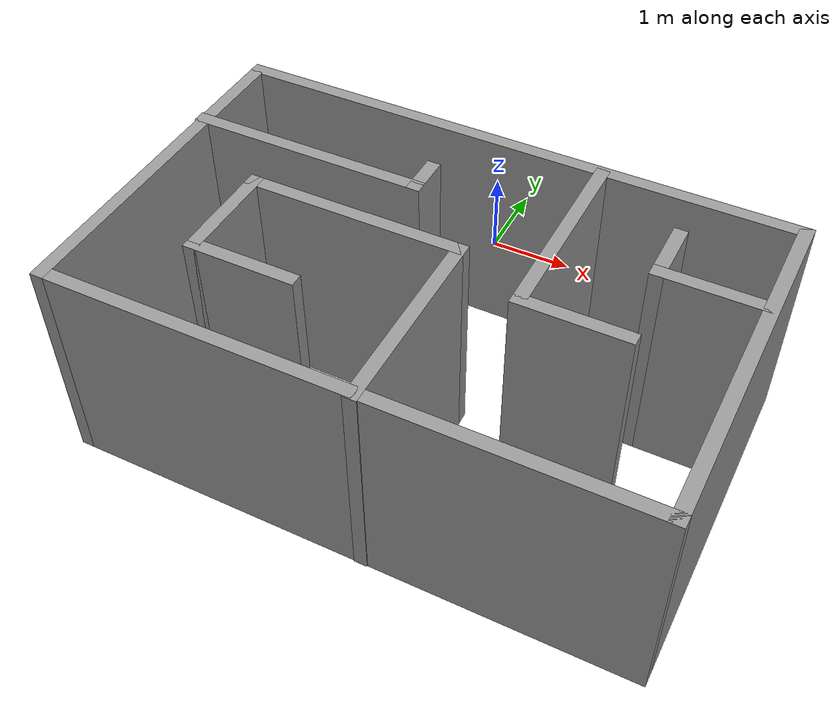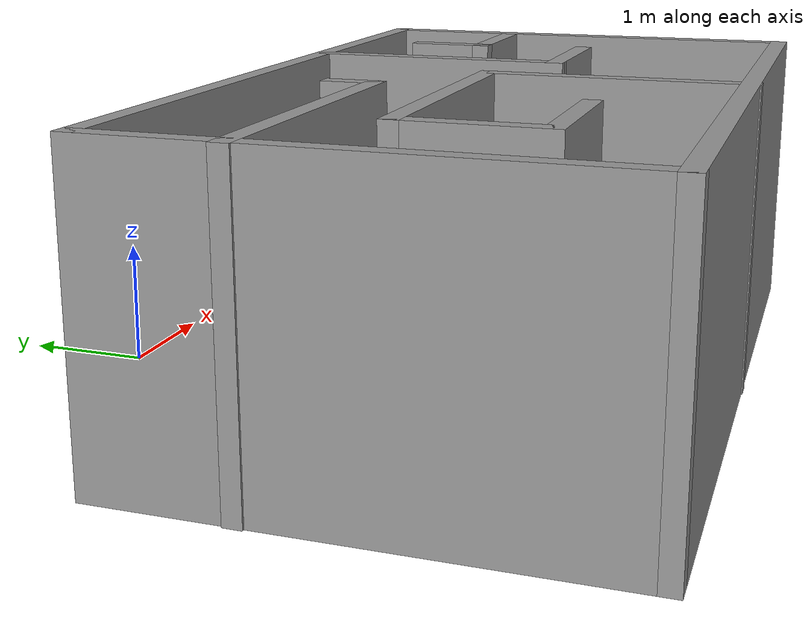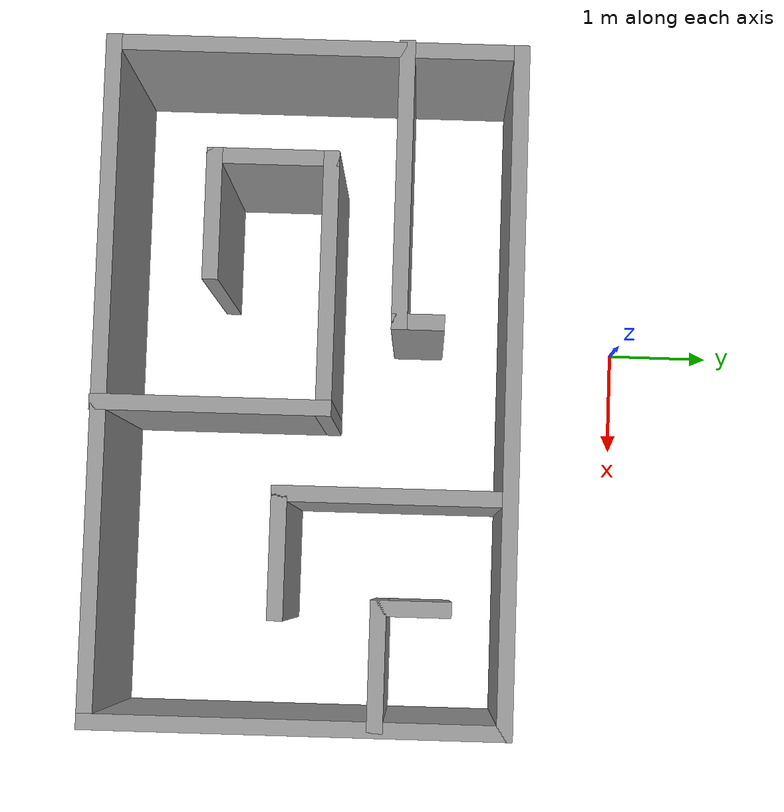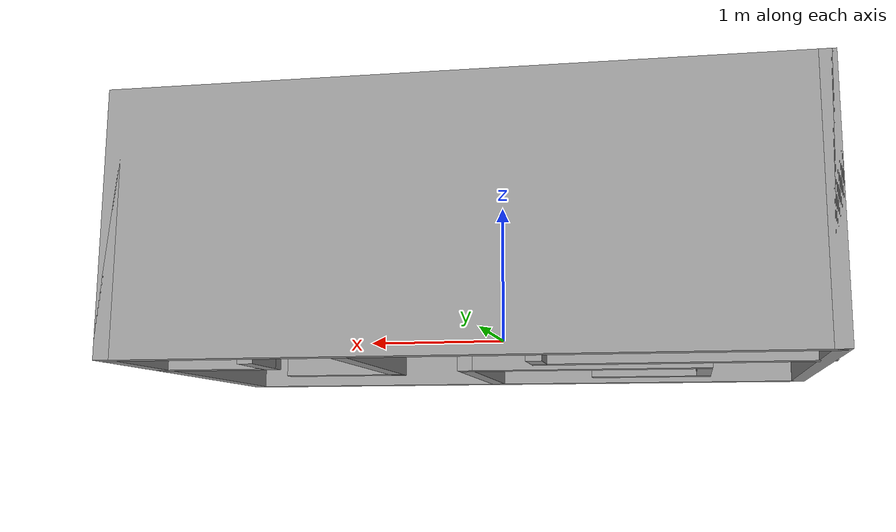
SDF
<?xml version='1.0'?>
<sdf version='1.7'>
  <model name='room'>
    <pose>0.595 -2.5225 0 0 -0 0</pose>
    <link name='Wall_10'>
      <collision name='Wall_10_Collision'>
        <geometry>
          <box>
            <size>6.5 0.15 2.5</size>
          </box>
        </geometry>
        <pose>0 0 1.25 0 -0 0</pose>
      </collision>
      <visual name='Wall_10_Visual'>
        <pose>0 0 1.25 0 -0 0</pose>
        <geometry>
          <box>
            <size>6.5 0.15 2.5</size>
          </box>
        </geometry>
        <material>
          <script>
            <uri>file://media/materials/scripts/gazebo.material</uri>
            <name>Gazebo/Grey</name>
          </script>
          <ambient>1 1 1 1</ambient>
        </material>
        <meta>
          <layer>0</layer>
        </meta>
      </visual>
      <pose>0.01 1.4125 0 0 -0 0</pose>
    </link>
    <link name='Wall_11'>
      <collision name='Wall_11_Collision'>
        <geometry>
          <box>
            <size>4 0.15 2.5</size>
          </box>
        </geometry>
        <pose>0 0 1.25 0 -0 0</pose>
      </collision>
      <visual name='Wall_11_Visual'>
        <pose>0 0 1.25 0 -0 0</pose>
        <geometry>
          <box>
            <size>4 0.15 2.5</size>
          </box>
        </geometry>
        <material>
          <script>
            <uri>file://media/materials/scripts/gazebo.material</uri>
            <name>Gazebo/Grey</name>
          </script>
          <ambient>1 1 1 1</ambient>
        </material>
        <meta>
          <layer>0</layer>
        </meta>
      </visual>
      <pose>3.185 -0.5125 0 0 -0 -1.5708</pose>
    </link>
    <link name='Wall_12'>
      <collision name='Wall_12_Collision'>
        <geometry>
          <box>
            <size>6.5 0.15 2.5</size>
          </box>
        </geometry>
        <pose>0 0 1.25 0 -0 0</pose>
      </collision>
      <visual name='Wall_12_Visual'>
        <pose>0 0 1.25 0 -0 0</pose>
        <geometry>
          <box>
            <size>6.5 0.15 2.5</size>
          </box>
        </geometry>
        <material>
          <script>
            <uri>file://media/materials/scripts/gazebo.material</uri>
            <name>Gazebo/Grey</name>
          </script>
          <ambient>1 1 1 1</ambient>
        </material>
        <meta>
          <layer>0</layer>
        </meta>
      </visual>
      <pose>0.01 -2.4375 0 0 -0 3.14159</pose>
    </link>
    <link name='Wall_13'>
      <collision name='Wall_13_Collision'>
        <geometry>
          <box>
            <size>4 0.15 2.5</size>
          </box>
        </geometry>
        <pose>0 0 1.25 0 -0 0</pose>
      </collision>
      <visual name='Wall_13_Visual'>
        <pose>0 0 1.25 0 -0 0</pose>
        <geometry>
          <box>
            <size>4 0.15 2.5</size>
          </box>
        </geometry>
        <material>
          <script>
            <uri>file://media/materials/scripts/gazebo.material</uri>
            <name>Gazebo/Grey</name>
          </script>
          <ambient>1 1 1 1</ambient>
        </material>
        <meta>
          <layer>0</layer>
        </meta>
      </visual>
      <pose>-3.165 -0.5125 0 0 -0 1.5708</pose>
    </link>
    <link name='Wall_16'>
      <collision name='Wall_16_Collision'>
        <geometry>
          <box>
            <size>0.5 0.15 2.5</size>
          </box>
        </geometry>
        <pose>0 0 1.25 0 -0 0</pose>
      </collision>
      <visual name='Wall_16_Visual'>
        <pose>0 0 1.25 0 -0 0</pose>
        <geometry>
          <box>
            <size>0.5 0.15 2.5</size>
          </box>
        </geometry>
        <material>
          <script>
            <uri>file://media/materials/scripts/gazebo.material</uri>
            <name>Gazebo/Grey</name>
          </script>
          <ambient>1 1 1 1</ambient>
        </material>
        <meta>
          <layer>0</layer>
        </meta>
      </visual>
      <pose>-0.585 0.5075 0 0 -0 1.5708</pose>
    </link>
    <link name='Wall_18'>
      <collision name='Wall_18_Collision'>
        <geometry>
          <box>
            <size>2.75 0.15 2.5</size>
          </box>
        </geometry>
        <pose>0 0 1.25 0 -0 0</pose>
      </collision>
      <visual name='Wall_18_Visual'>
        <pose>0 0 1.25 0 -0 0</pose>
        <geometry>
          <box>
            <size>2.75 0.15 2.5</size>
          </box>
        </geometry>
        <material>
          <script>
            <uri>file://media/materials/scripts/gazebo.material</uri>
            <name>Gazebo/Grey</name>
          </script>
          <ambient>1 1 1 1</ambient>
        </material>
        <meta>
          <layer>0</layer>
        </meta>
      </visual>
      <pose>-1.885 0.3325 0 0 -0 3.14159</pose>
    </link>
    <link name='Wall_20'>
      <collision name='Wall_20_Collision'>
        <geometry>
          <box>
            <size>2.25 0.15 2.5</size>
          </box>
        </geometry>
        <pose>0 0 1.25 0 -0 0</pose>
      </collision>
      <visual name='Wall_20_Visual'>
        <pose>0 0 1.25 0 -0 0</pose>
        <geometry>
          <box>
            <size>2.25 0.15 2.5</size>
          </box>
        </geometry>
        <material>
          <script>
            <uri>file://media/materials/scripts/gazebo.material</uri>
            <name>Gazebo/Grey</name>
          </script>
          <ambient>1 1 1 1</ambient>
        </material>
        <meta>
          <layer>0</layer>
        </meta>
      </visual>
      <pose>0.245 -1.3975 0 0 -0 1.5708</pose>
    </link>
    <link name='Wall_21'>
      <collision name='Wall_21_Collision'>
        <geometry>
          <box>
            <size>2.5 0.15 2.5</size>
          </box>
        </geometry>
        <pose>0 0 1.25 0 -0 0</pose>
      </collision>
      <visual name='Wall_21_Visual'>
        <pose>0 0 1.25 0 -0 0</pose>
        <geometry>
          <box>
            <size>2.5 0.15 2.5</size>
          </box>
        </geometry>
        <material>
          <script>
            <uri>file://media/materials/scripts/gazebo.material</uri>
            <name>Gazebo/Grey</name>
          </script>
          <ambient>1 1 1 1</ambient>
        </material>
        <meta>
          <layer>0</layer>
        </meta>
      </visual>
      <pose>-0.93 -0.3475 0 0 -0 3.14159</pose>
    </link>
    <link name='Wall_22'>
      <collision name='Wall_22_Collision'>
        <geometry>
          <box>
            <size>1.25 0.15 2.5</size>
          </box>
        </geometry>
        <pose>0 0 1.25 0 -0 0</pose>
      </collision>
      <visual name='Wall_22_Visual'>
        <pose>0 0 1.25 0 -0 0</pose>
        <geometry>
          <box>
            <size>1.25 0.15 2.5</size>
          </box>
        </geometry>
        <material>
          <script>
            <uri>file://media/materials/scripts/gazebo.material</uri>
            <name>Gazebo/Grey</name>
          </script>
          <ambient>1 1 1 1</ambient>
        </material>
        <meta>
          <layer>0</layer>
        </meta>
      </visual>
      <pose>-2.105 -0.8975 0 0 -0 -1.5708</pose>
    </link>
    <link name='Wall_23'>
      <collision name='Wall_23_Collision'>
        <geometry>
          <box>
            <size>1.25 0.15 2.5</size>
          </box>
        </geometry>
        <pose>0 0 1.25 0 -0 0</pose>
      </collision>
      <visual name='Wall_23_Visual'>
        <pose>0 0 1.25 0 -0 0</pose>
        <geometry>
          <box>
            <size>1.25 0.15 2.5</size>
          </box>
        </geometry>
        <material>
          <script>
            <uri>file://media/materials/scripts/gazebo.material</uri>
            <name>Gazebo/Grey</name>
          </script>
          <ambient>1 1 1 1</ambient>
        </material>
        <meta>
          <layer>0</layer>
        </meta>
      </visual>
      <pose>-1.555 -1.4475 0 0 -0 0</pose>
    </link>
    <link name='Wall_25'>
      <collision name='Wall_25_Collision'>
        <geometry>
          <box>
            <size>2.25 0.15 2.5</size>
          </box>
        </geometry>
        <pose>0 0 1.25 0 -0 0</pose>
      </collision>
      <visual name='Wall_25_Visual'>
        <pose>0 0 1.25 0 -0 0</pose>
        <geometry>
          <box>
            <size>2.25 0.15 2.5</size>
          </box>
        </geometry>
        <material>
          <script>
            <uri>file://media/materials/scripts/gazebo.material</uri>
            <name>Gazebo/Grey</name>
          </script>
          <ambient>1 1 1 1</ambient>
        </material>
        <meta>
          <layer>0</layer>
        </meta>
      </visual>
      <pose>1.045 0.3225 0 0 -0 -1.5708</pose>
    </link>
    <link name='Wall_26'>
      <collision name='Wall_26_Collision'>
        <geometry>
          <box>
            <size>1.25 0.15 2.5</size>
          </box>
        </geometry>
        <pose>0 0 1.25 0 -0 0</pose>
      </collision>
      <visual name='Wall_26_Visual'>
        <pose>0 0 1.25 0 -0 0</pose>
        <geometry>
          <box>
            <size>1.25 0.15 2.5</size>
          </box>
        </geometry>
        <material>
          <script>
            <uri>file://media/materials/scripts/gazebo.material</uri>
            <name>Gazebo/Grey</name>
          </script>
          <ambient>1 1 1 1</ambient>
        </material>
        <meta>
          <layer>0</layer>
        </meta>
      </visual>
      <pose>1.595 -0.7275 0 0 -0 0</pose>
    </link>
    <link name='Wall_28'>
      <collision name='Wall_28_Collision'>
        <geometry>
          <box>
            <size>1.25 0.15 2.5</size>
          </box>
        </geometry>
        <pose>0 0 1.25 0 -0 0</pose>
      </collision>
      <visual name='Wall_28_Visual'>
        <pose>0 0 1.25 0 -0 0</pose>
        <geometry>
          <box>
            <size>1.25 0.15 2.5</size>
          </box>
        </geometry>
        <material>
          <script>
            <uri>file://media/materials/scripts/gazebo.material</uri>
            <name>Gazebo/Grey</name>
          </script>
          <ambient>1 1 1 1</ambient>
        </material>
        <meta>
          <layer>0</layer>
        </meta>
      </visual>
      <pose>2.625 0.2225 0 0 -0 3.14159</pose>
    </link>
    <link name='Wall_29'>
      <collision name='Wall_29_Collision'>
        <geometry>
          <box>
            <size>0.75 0.15 2.5</size>
          </box>
        </geometry>
        <pose>0 0 1.25 0 -0 0</pose>
      </collision>
      <visual name='Wall_29_Visual'>
        <pose>0 0 1.25 0 -0 0</pose>
        <geometry>
          <box>
            <size>0.75 0.15 2.5</size>
          </box>
        </geometry>
        <material>
          <script>
            <uri>file://media/materials/scripts/gazebo.material</uri>
            <name>Gazebo/Grey</name>
          </script>
          <ambient>1 1 1 1</ambient>
        </material>
        <meta>
          <layer>0</layer>
        </meta>
      </visual>
      <pose>2.075 0.5225 0 0 -0 1.5708</pose>
    </link>
    <static>1</static>
  </model>
</sdf>
